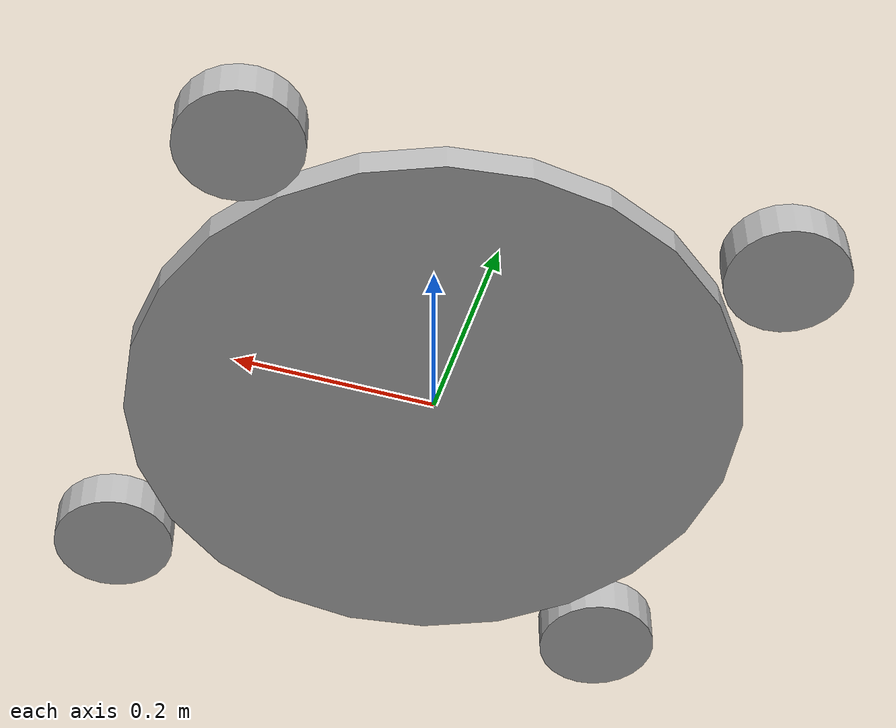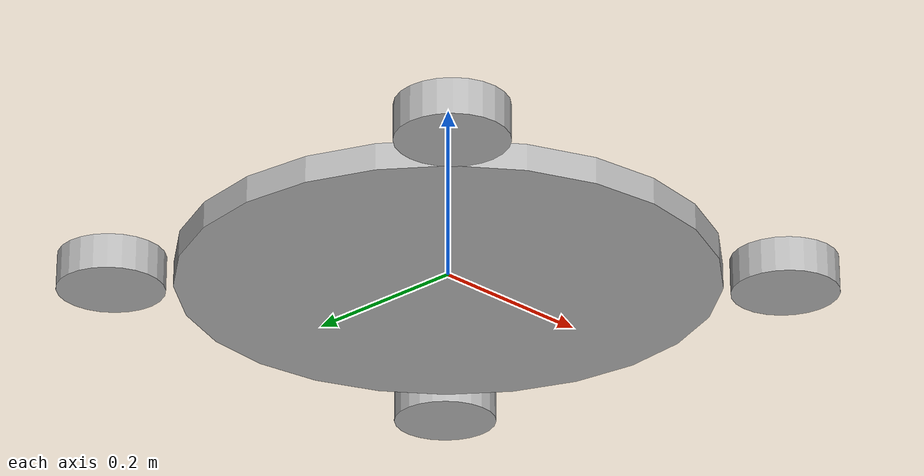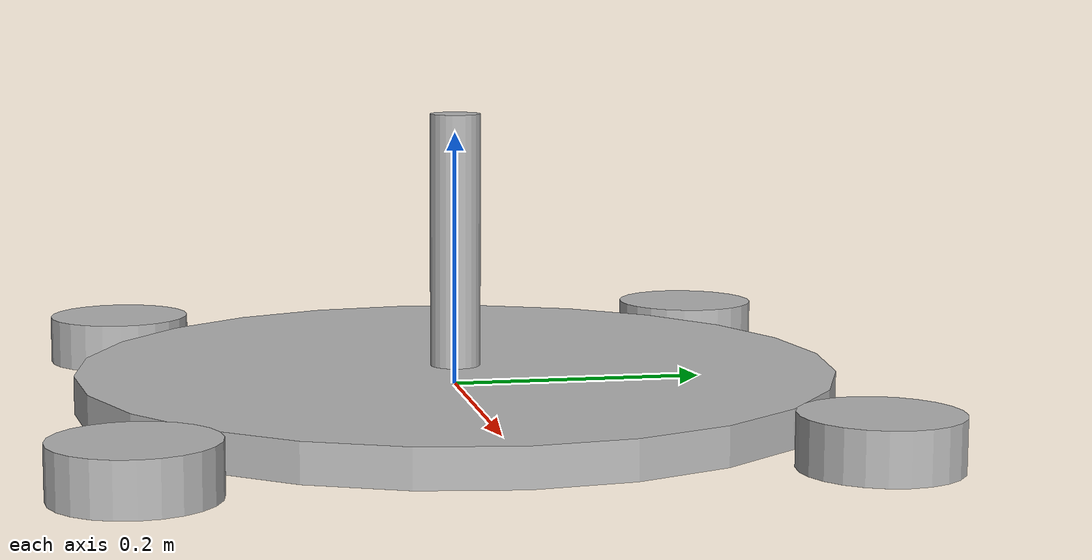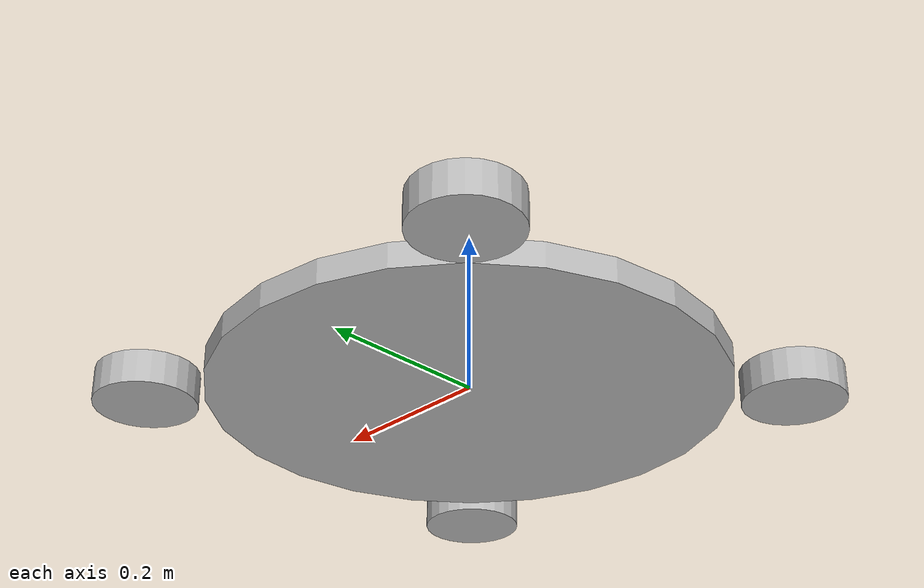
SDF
<?xml version="1.0" ?>
<sdf version="1.5">
  <model name="turtlebot3_burger">
    <pose>0.0 0.0 0.0 0.0 0.0 0.0</pose>

    <link name="base_footprint"/>

    <link name="base_link">

      <inertial>
        <pose>0 0 0 0 0 0</pose>
        <inertia>
          <ixx>7.2397393e-01</ixx>
          <ixy>4.686399e-10</ixy>
          <ixz>-1.09525703e-08</ixz>
          <iyy>7.2397393e-01</iyy>
          <iyz>2.8582649e-09</iyz>
          <izz>6.53050163e-01</izz>
        </inertia>
        <mass>8.2573504e-01</mass>
      </inertial>

      <visual name="base_visual">
        <pose>0 0.0 0 0 0 0</pose>
        <geometry>
          <cylinder>
            <radius>0.3</radius>
            <length>0.03</length>
          </cylinder>
        </geometry>
      </visual>
    </link>

    <link name="imu_link">
      <sensor name="tb3_imu" type="imu">
        <always_on>true</always_on>
        <update_rate>200</update_rate>
        <imu>
          <angular_velocity>
            <x>
              <noise type="gaussian">
                <mean>0.0</mean>
                <stddev>2e-4</stddev>
              </noise>
            </x>
            <y>
              <noise type="gaussian">
                <mean>0.0</mean>
                <stddev>2e-4</stddev>
              </noise>
            </y>
            <z>
              <noise type="gaussian">
                <mean>0.0</mean>
                <stddev>2e-4</stddev>
              </noise>
            </z>
          </angular_velocity>
          <linear_acceleration>
            <x>
              <noise type="gaussian">
                <mean>0.0</mean>
                <stddev>1.7e-2</stddev>
              </noise>
            </x>
            <y>
              <noise type="gaussian">
                <mean>0.0</mean>
                <stddev>1.7e-2</stddev>
              </noise>
            </y>
            <z>
              <noise type="gaussian">
                <mean>0.0</mean>
                <stddev>1.7e-2</stddev>
              </noise>
            </z>
          </linear_acceleration>
        </imu>
        <plugin name="turtlebot3_imu" filename="libgazebo_ros_imu_sensor.so">
          <ros>
            <remapping>~/out:=imu</remapping>
          </ros>
        </plugin>
      </sensor>
    </link>

    <link name="rotor_left_front_link">

      <inertial>
        <pose>0.26 0.26 0 0 0 0</pose>
        <inertia>
          <ixx>1.8158194e-03</ixx>
          <ixy>-9.3392e-12</ixy>
          <ixz>1.04909e-11</ixz>
          <iyy>3.2922126e-03</iyy>
          <iyz>5.75694e-11</iyz>
          <izz>1.8158194e-03</izz>
        </inertia>
        <mass>2.8498940e-02</mass>
      </inertial>

      <visual name="wheel_left_visual">
        <pose>0.26 0.26 0 0 0 0</pose>
        <geometry>
          <cylinder>
            <radius>0.06</radius>
            <length>0.04</length>
          </cylinder>
        </geometry>
      </visual>
    </link>

    <link name="rotor_right_front_link">

      <inertial>
        <pose>0.26 -0.26 0 0 0 0</pose>
        <inertia>
          <ixx>1.8158194e-03</ixx>
          <ixy>-9.3392e-12</ixy>
          <ixz>1.04909e-11</ixz>
          <iyy>3.2922126e-03</iyy>
          <iyz>5.75694e-11</iyz>
          <izz>1.8158194e-03</izz>
        </inertia>
        <mass>2.8498940e-02</mass>
      </inertial>

      <visual name="wheel_left_visual">
        <pose>0.26 -0.26 0 0 0 0</pose>
        <geometry>
          <cylinder>
            <radius>0.06</radius>
            <length>0.04</length>
          </cylinder>
        </geometry>
      </visual>
    </link>

    <link name="rotor_left_back_link">
      <inertial>
        <pose>-0.26 0.26 0 0 0 0</pose>
        <inertia>
          <ixx>1.8158194e-03</ixx>
          <ixy>-9.3392e-12</ixy>
          <ixz>1.04909e-11</ixz>
          <iyy>3.2922126e-03</iyy>
          <iyz>5.75694e-11</iyz>
          <izz>1.8158194e-03</izz>
        </inertia>
        <mass>2.8498940e-02</mass>
      </inertial>

      <visual name="wheel_left_visual">
        <pose>-0.26 0.26 0 0 0 0</pose>
        <geometry>
          <cylinder>
            <radius>0.06</radius>
            <length>0.04</length>
          </cylinder>
        </geometry>
      </visual>
    </link>

    <link name="rotor_right_back_link">

      <inertial>
        <pose>-0.26 -0.26 0 0 0 0</pose>
        <inertia>
          <ixx>1.8158194e-03</ixx>
          <ixy>-9.3392e-12</ixy>
          <ixz>1.04909e-11</ixz>
          <iyy>3.2922126e-03</iyy>
          <iyz>5.75694e-11</iyz>
          <izz>1.8158194e-03</izz>
        </inertia>
        <mass>2.8498940e-02</mass>
      </inertial>

      <visual name="wheel_left_visual">
        <pose>-0.26 -0.26 0 0 0 0</pose>
        <geometry>
          <cylinder>
            <radius>0.06</radius>
            <length>0.04</length>
          </cylinder>
        </geometry>
      </visual>
    </link>

    <joint name="base_joint" type="fixed">
      <parent>base_footprint</parent>
      <child>base_link</child>
      <pose>0.0 0.0 0.0 0 0 0</pose>
    </joint>
<!-- 这里轮子用fixed的原因是，不想让它在坡上的时候也能滑动 -->
    <joint name="wheel_left_joint" type="fixed">
      <parent>base_link</parent>
      <child>rotor_left_front_link</child>
      <pose>0.26 0.26 0 0 0 0</pose>
      <axis>
        <xyz>0 0 1</xyz>
      </axis>
    </joint>

    <joint name="wheel_right_joint" type="fixed">
      <parent>base_link</parent>
      <child>rotor_right_front_link</child>
      <pose>0.26 -0.26 0 0 0 0</pose>
      <axis>
        <xyz>0 0 1</xyz>
      </axis>
    </joint>

    <joint name="wheel_left_back_joint" type="fixed">
      <parent>base_link</parent>
      <child>rotor_left_back_link</child>
      <pose>-0.26 0.26 0 0 0 0</pose>
      <axis>
        <xyz>0 0 1</xyz>
      </axis>
    </joint>

    <joint name="wheel_right_back_joint" type="fixed">
      <parent>base_link</parent>
      <child>rotor_right_back_link</child>
      <pose>-0.26 -0.26 0 0 0 0</pose>
      <axis>
        <xyz>0 0 1</xyz>
      </axis>
    </joint>

    <link name="support">
      <inertial>
        <pose>0 0 0.115 0 0 0</pose>
        <inertia>
          <ixx>1.8158194e-03</ixx>
          <ixy>-9.3392e-12</ixy>
          <ixz>1.04909e-11</ixz>
          <iyy>3.2922126e-03</iyy>
          <iyz>5.75694e-11</iyz>
          <izz>1.8158194e-03</izz>
        </inertia>
        <mass>2.8498940e-02</mass>
      </inertial>

      <visual name="support_visual">
        <pose>0 0 0.115 0 0 0</pose>
        <geometry>
          <cylinder>
            <radius>0.02</radius>
            <length>0.2</length>
          </cylinder>
        </geometry>
      </visual>
    </link>
    <joint name="support_joint" type="fixed">
      <parent>base_link</parent>
      <child>support</child>
      <pose>0 0 0.015 0 0 0</pose>
      <axis>
        <xyz>0 0 1</xyz>
      </axis>
    </joint>

  </model>
</sdf>
